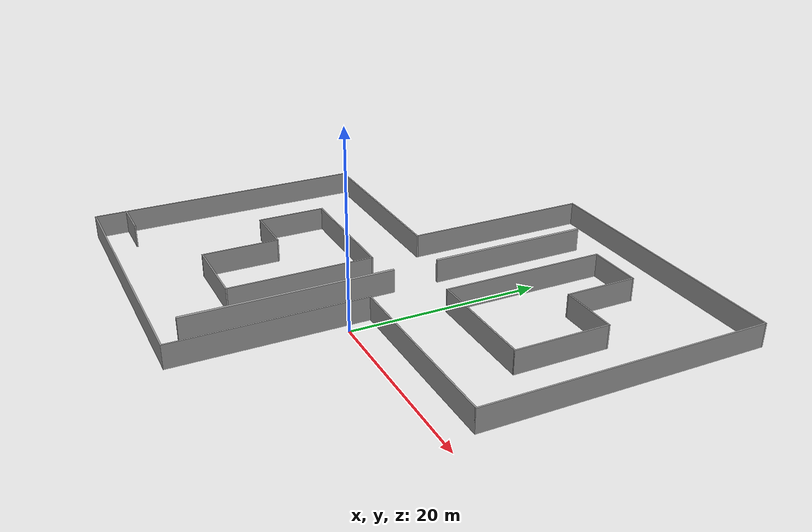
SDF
<?xml version='1.0'?>
<sdf version='1.6'>
  <model name='ext_wall'>
    <pose frame=''>-6.25784 7.76397 0 0 -0 0</pose>
    <link name='Wall_35'>
      <collision name='Wall_35_Collision'>
        <geometry>
          <box>
            <size>30 0.15 2.5</size>
          </box>
        </geometry>
        <pose frame=''>0 0 1.25 0 -0 0</pose>
      </collision>
      <visual name='Wall_35_Visual'>
        <pose frame=''>0 0 1.25 0 -0 0</pose>
        <geometry>
          <box>
            <size>30 0.15 2.5</size>
          </box>
        </geometry>
        <material>
          <script>
            <uri>file://media/materials/scripts/gazebo.material</uri>
            <name>Gazebo/Grey</name>
          </script>
          <ambient>1 1 1 1</ambient>
        </material>
        <meta>
          <layer>0</layer>
        </meta>
      </visual>
      <pose frame=''>-24.8294 -9.925 0 0 -0 -1.5708</pose>
    </link>
    <link name='Wall_37'>
      <collision name='Wall_37_Collision'>
        <geometry>
          <box>
            <size>30 0.15 2.5</size>
          </box>
        </geometry>
        <pose frame=''>0 0 1.25 0 -0 0</pose>
      </collision>
      <visual name='Wall_37_Visual'>
        <pose frame=''>0 0 1.25 0 -0 0</pose>
        <geometry>
          <box>
            <size>30 0.15 2.5</size>
          </box>
        </geometry>
        <material>
          <script>
            <uri>file://media/materials/scripts/gazebo.material</uri>
            <name>Gazebo/Grey</name>
          </script>
          <ambient>1 1 1 1</ambient>
        </material>
        <meta>
          <layer>0</layer>
        </meta>
      </visual>
      <pose frame=''>-9.90441 -24.85 0 0 -0 0</pose>
    </link>
    <link name='Wall_38'>
      <collision name='Wall_38_Collision'>
        <geometry>
          <box>
            <size>20 0.15 2.5</size>
          </box>
        </geometry>
        <pose frame=''>0 0 1.25 0 -0 0</pose>
      </collision>
      <visual name='Wall_38_Visual'>
        <pose frame=''>0 0 1.25 0 -0 0</pose>
        <geometry>
          <box>
            <size>20 0.15 2.5</size>
          </box>
        </geometry>
        <material>
          <script>
            <uri>file://media/materials/scripts/gazebo.material</uri>
            <name>Gazebo/Grey</name>
          </script>
          <ambient>1 1 1 1</ambient>
        </material>
        <meta>
          <layer>0</layer>
        </meta>
      </visual>
      <pose frame=''>5.0206 -14.925 0 0 -0 1.5708</pose>
    </link>
    <link name='Wall_45'>
      <collision name='Wall_45_Collision'>
        <geometry>
          <box>
            <size>20 0.15 2.5</size>
          </box>
        </geometry>
        <pose frame=''>0 0 1.25 0 -0 0</pose>
      </collision>
      <visual name='Wall_45_Visual'>
        <pose frame=''>0 0 1.25 0 -0 0</pose>
        <geometry>
          <box>
            <size>20 0.15 2.5</size>
          </box>
        </geometry>
        <material>
          <script>
            <uri>file://media/materials/scripts/gazebo.material</uri>
            <name>Gazebo/Grey</name>
          </script>
          <ambient>1 1 1 1</ambient>
        </material>
        <meta>
          <layer>0</layer>
        </meta>
      </visual>
      <pose frame=''>14.9456 -5 0 0 -0 0</pose>
    </link>
    <link name='Wall_46'>
      <collision name='Wall_46_Collision'>
        <geometry>
          <box>
            <size>30 0.15 2.5</size>
          </box>
        </geometry>
        <pose frame=''>0 0 1.25 0 -0 0</pose>
      </collision>
      <visual name='Wall_46_Visual'>
        <pose frame=''>0 0 1.25 0 -0 0</pose>
        <geometry>
          <box>
            <size>30 0.15 2.5</size>
          </box>
        </geometry>
        <material>
          <script>
            <uri>file://media/materials/scripts/gazebo.material</uri>
            <name>Gazebo/Grey</name>
          </script>
          <ambient>1 1 1 1</ambient>
        </material>
        <meta>
          <layer>0</layer>
        </meta>
      </visual>
      <pose frame=''>24.8706 9.925 0 0 -0 1.5708</pose>
    </link>
    <link name='Wall_47'>
      <collision name='Wall_47_Collision'>
        <geometry>
          <box>
            <size>30 0.15 2.5</size>
          </box>
        </geometry>
        <pose frame=''>0 0 1.25 0 -0 0</pose>
      </collision>
      <visual name='Wall_47_Visual'>
        <pose frame=''>0 0 1.25 0 -0 0</pose>
        <geometry>
          <box>
            <size>30 0.15 2.5</size>
          </box>
        </geometry>
        <material>
          <script>
            <uri>file://media/materials/scripts/gazebo.material</uri>
            <name>Gazebo/Grey</name>
          </script>
          <ambient>1 1 1 1</ambient>
        </material>
        <meta>
          <layer>0</layer>
        </meta>
      </visual>
      <pose frame=''>9.9456 24.85 0 0 -0 3.14159</pose>
    </link>
    <link name='Wall_50'>
      <collision name='Wall_50_Collision'>
        <geometry>
          <box>
            <size>20 0.15 2.5</size>
          </box>
        </geometry>
        <pose frame=''>0 0 1.25 0 -0 0</pose>
      </collision>
      <visual name='Wall_50_Visual'>
        <pose frame=''>0 0 1.25 0 -0 0</pose>
        <geometry>
          <box>
            <size>20 0.15 2.5</size>
          </box>
        </geometry>
        <material>
          <script>
            <uri>file://media/materials/scripts/gazebo.material</uri>
            <name>Gazebo/Grey</name>
          </script>
          <ambient>1 1 1 1</ambient>
        </material>
        <meta>
          <layer>0</layer>
        </meta>
      </visual>
      <pose frame=''>-4.9794 14.925 0 0 -0 -1.5708</pose>
    </link>
    <link name='Wall_51'>
      <collision name='Wall_51_Collision'>
        <geometry>
          <box>
            <size>20 0.15 2.5</size>
          </box>
        </geometry>
        <pose frame=''>0 0 1.25 0 -0 0</pose>
      </collision>
      <visual name='Wall_51_Visual'>
        <pose frame=''>0 0 1.25 0 -0 0</pose>
        <geometry>
          <box>
            <size>20 0.15 2.5</size>
          </box>
        </geometry>
        <material>
          <script>
            <uri>file://media/materials/scripts/gazebo.material</uri>
            <name>Gazebo/Grey</name>
          </script>
          <ambient>1 1 1 1</ambient>
        </material>
        <meta>
          <layer>0</layer>
        </meta>
      </visual>
      <pose frame=''>-14.9044 5 0 0 -0 3.14159</pose>
    </link>
    <link name='Wall_53'>
      <collision name='Wall_53_Collision'>
        <geometry>
          <box>
            <size>13.8508 0.15 2.5</size>
          </box>
        </geometry>
        <pose frame=''>0 0 1.25 0 -0 0</pose>
      </collision>
      <visual name='Wall_53_Visual'>
        <pose frame=''>0 0 1.25 0 -0 0</pose>
        <geometry>
          <box>
            <size>13.8508 0.15 2.5</size>
          </box>
        </geometry>
        <material>
          <script>
            <uri>file://media/materials/scripts/gazebo.material</uri>
            <name>Gazebo/Grey</name>
          </script>
          <ambient>1 1 1 1</ambient>
        </material>
        <meta>
          <layer>0</layer>
        </meta>
      </visual>
      <pose frame=''>-9.24926 -1.45281 0 0 -0 0</pose>
    </link>
    <link name='Wall_54'>
      <collision name='Wall_54_Collision'>
        <geometry>
          <box>
            <size>15.5 0.15 2.5</size>
          </box>
        </geometry>
        <pose frame=''>0 0 1.25 0 -0 0</pose>
      </collision>
      <visual name='Wall_54_Visual'>
        <pose frame=''>0 0 1.25 0 -0 0</pose>
        <geometry>
          <box>
            <size>15.5 0.15 2.5</size>
          </box>
        </geometry>
        <material>
          <script>
            <uri>file://media/materials/scripts/gazebo.material</uri>
            <name>Gazebo/Grey</name>
          </script>
          <ambient>1 1 1 1</ambient>
        </material>
        <meta>
          <layer>0</layer>
        </meta>
      </visual>
      <pose frame=''>-2.39926 -9.12781 0 0 -0 -1.5708</pose>
    </link>
    <link name='Wall_55'>
      <collision name='Wall_55_Collision'>
        <geometry>
          <box>
            <size>8.25 0.15 2.5</size>
          </box>
        </geometry>
        <pose frame=''>0 0 1.25 0 -0 0</pose>
      </collision>
      <visual name='Wall_55_Visual'>
        <pose frame=''>0 0 1.25 0 -0 0</pose>
        <geometry>
          <box>
            <size>8.25 0.15 2.5</size>
          </box>
        </geometry>
        <material>
          <script>
            <uri>file://media/materials/scripts/gazebo.material</uri>
            <name>Gazebo/Grey</name>
          </script>
          <ambient>1 1 1 1</ambient>
        </material>
        <meta>
          <layer>0</layer>
        </meta>
      </visual>
      <pose frame=''>-6.44926 -16.8028 0 0 -0 3.14159</pose>
    </link>
    <link name='Wall_56'>
      <collision name='Wall_56_Collision'>
        <geometry>
          <box>
            <size>8.25 0.15 2.5</size>
          </box>
        </geometry>
        <pose frame=''>0 0 1.25 0 -0 0</pose>
      </collision>
      <visual name='Wall_56_Visual'>
        <pose frame=''>0 0 1.25 0 -0 0</pose>
        <geometry>
          <box>
            <size>8.25 0.15 2.5</size>
          </box>
        </geometry>
        <material>
          <script>
            <uri>file://media/materials/scripts/gazebo.material</uri>
            <name>Gazebo/Grey</name>
          </script>
          <ambient>1 1 1 1</ambient>
        </material>
        <meta>
          <layer>0</layer>
        </meta>
      </visual>
      <pose frame=''>-10.4993 -12.7528 0 0 -0 1.5708</pose>
    </link>
    <link name='Wall_57'>
      <collision name='Wall_57_Collision'>
        <geometry>
          <box>
            <size>5.75 0.15 2.5</size>
          </box>
        </geometry>
        <pose frame=''>0 0 1.25 0 -0 0</pose>
      </collision>
      <visual name='Wall_57_Visual'>
        <pose frame=''>0 0 1.25 0 -0 0</pose>
        <geometry>
          <box>
            <size>5.75 0.15 2.5</size>
          </box>
        </geometry>
        <material>
          <script>
            <uri>file://media/materials/scripts/gazebo.material</uri>
            <name>Gazebo/Grey</name>
          </script>
          <ambient>1 1 1 1</ambient>
        </material>
        <meta>
          <layer>0</layer>
        </meta>
      </visual>
      <pose frame=''>-13.2993 -8.70281 0 0 -0 3.14159</pose>
    </link>
    <link name='Wall_61'>
      <collision name='Wall_61_Collision'>
        <geometry>
          <box>
            <size>7.4 0.15 2.5</size>
          </box>
        </geometry>
        <pose frame=''>0 0 1.25 0 -0 0</pose>
      </collision>
      <visual name='Wall_61_Visual'>
        <pose frame=''>0 0 1.25 0 -0 0</pose>
        <geometry>
          <box>
            <size>7.4 0.15 2.5</size>
          </box>
        </geometry>
        <material>
          <script>
            <uri>file://media/materials/scripts/gazebo.material</uri>
            <name>Gazebo/Grey</name>
          </script>
          <ambient>1 1 1 1</ambient>
        </material>
        <meta>
          <layer>0</layer>
        </meta>
      </visual>
      <pose frame=''>-16.0993 -5.07781 0 0 -0 1.5708</pose>
    </link>
    <link name='Wall_81'>
      <collision name='Wall_81_Collision'>
        <geometry>
          <box>
            <size>21.8997 0.3 2.5</size>
          </box>
        </geometry>
        <pose frame=''>0 0 1.25 0 -0 0</pose>
      </collision>
      <visual name='Wall_81_Visual'>
        <pose frame=''>0 0 1.25 0 -0 0</pose>
        <geometry>
          <box>
            <size>21.8997 0.3 2.5</size>
          </box>
        </geometry>
        <material>
          <script>
            <uri>file://media/materials/scripts/gazebo.material</uri>
            <name>Gazebo/Grey</name>
          </script>
          <ambient>1 1 1 1</ambient>
        </material>
        <meta>
          <layer>0</layer>
        </meta>
      </visual>
      <pose frame=''>0.968843 -11.554 0 0 -0 1.5708</pose>
    </link>
    <link name='Wall_83'>
      <collision name='Wall_83_Collision'>
        <geometry>
          <box>
            <size>17.1497 0.3 2.5</size>
          </box>
        </geometry>
        <pose frame=''>0 0 1.25 0 -0 0</pose>
      </collision>
      <visual name='Wall_83_Visual'>
        <pose frame=''>0 0 1.25 0 -0 0</pose>
        <geometry>
          <box>
            <size>17.1497 0.3 2.5</size>
          </box>
        </geometry>
        <material>
          <script>
            <uri>file://media/materials/scripts/gazebo.material</uri>
            <name>Gazebo/Grey</name>
          </script>
          <ambient>1 1 1 1</ambient>
        </material>
        <meta>
          <layer>0</layer>
        </meta>
      </visual>
      <pose frame=''>0.968843 12.771 0 0 -0 1.5708</pose>
    </link>
    <link name='Wall_85'>
      <collision name='Wall_85_Collision'>
        <geometry>
          <box>
            <size>17.5 0.15 2.5</size>
          </box>
        </geometry>
        <pose frame=''>0 0 1.25 0 -0 0</pose>
      </collision>
      <visual name='Wall_85_Visual'>
        <pose frame=''>0 0 1.25 0 -0 0</pose>
        <geometry>
          <box>
            <size>17.5 0.15 2.5</size>
          </box>
        </geometry>
        <material>
          <script>
            <uri>file://media/materials/scripts/gazebo.material</uri>
            <name>Gazebo/Grey</name>
          </script>
          <ambient>1 1 1 1</ambient>
        </material>
        <meta>
          <layer>0</layer>
        </meta>
      </visual>
      <pose frame=''>6.90221 10.8782 0 0 -0 -1.5708</pose>
    </link>
    <link name='Wall_86'>
      <collision name='Wall_86_Collision'>
        <geometry>
          <box>
            <size>12.25 0.15 2.5</size>
          </box>
        </geometry>
        <pose frame=''>0 0 1.25 0 -0 0</pose>
      </collision>
      <visual name='Wall_86_Visual'>
        <pose frame=''>0 0 1.25 0 -0 0</pose>
        <geometry>
          <box>
            <size>12.25 0.15 2.5</size>
          </box>
        </geometry>
        <material>
          <script>
            <uri>file://media/materials/scripts/gazebo.material</uri>
            <name>Gazebo/Grey</name>
          </script>
          <ambient>1 1 1 1</ambient>
        </material>
        <meta>
          <layer>0</layer>
        </meta>
      </visual>
      <pose frame=''>12.9522 2.20321 0 0 -0 0</pose>
    </link>
    <link name='Wall_87'>
      <collision name='Wall_87_Collision'>
        <geometry>
          <box>
            <size>10 0.15 2.5</size>
          </box>
        </geometry>
        <pose frame=''>0 0 1.25 0 -0 0</pose>
      </collision>
      <visual name='Wall_87_Visual'>
        <pose frame=''>0 0 1.25 0 -0 0</pose>
        <geometry>
          <box>
            <size>10 0.15 2.5</size>
          </box>
        </geometry>
        <material>
          <script>
            <uri>file://media/materials/scripts/gazebo.material</uri>
            <name>Gazebo/Grey</name>
          </script>
          <ambient>1 1 1 1</ambient>
        </material>
        <meta>
          <layer>0</layer>
        </meta>
      </visual>
      <pose frame=''>19.0022 7.12821 0 0 -0 1.5708</pose>
    </link>
    <link name='Wall_88'>
      <collision name='Wall_88_Collision'>
        <geometry>
          <box>
            <size>6.4 0.15 2.5</size>
          </box>
        </geometry>
        <pose frame=''>0 0 1.25 0 -0 0</pose>
      </collision>
      <visual name='Wall_88_Visual'>
        <pose frame=''>0 0 1.25 0 -0 0</pose>
        <geometry>
          <box>
            <size>6.4 0.15 2.5</size>
          </box>
        </geometry>
        <material>
          <script>
            <uri>file://media/materials/scripts/gazebo.material</uri>
            <name>Gazebo/Grey</name>
          </script>
          <ambient>1 1 1 1</ambient>
        </material>
        <meta>
          <layer>0</layer>
        </meta>
      </visual>
      <pose frame=''>15.8772 12.0532 0 0 -0 3.14159</pose>
    </link>
    <link name='Wall_89'>
      <collision name='Wall_89_Collision'>
        <geometry>
          <box>
            <size>7.65 0.15 2.5</size>
          </box>
        </geometry>
        <pose frame=''>0 0 1.25 0 -0 0</pose>
      </collision>
      <visual name='Wall_89_Visual'>
        <pose frame=''>0 0 1.25 0 -0 0</pose>
        <geometry>
          <box>
            <size>7.65 0.15 2.5</size>
          </box>
        </geometry>
        <material>
          <script>
            <uri>file://media/materials/scripts/gazebo.material</uri>
            <name>Gazebo/Grey</name>
          </script>
          <ambient>1 1 1 1</ambient>
        </material>
        <meta>
          <layer>0</layer>
        </meta>
      </visual>
      <pose frame=''>12.7522 15.8032 0 0 -0 1.5708</pose>
    </link>
    <link name='Wall_90'>
      <collision name='Wall_90_Collision'>
        <geometry>
          <box>
            <size>6 0.15 2.5</size>
          </box>
        </geometry>
        <pose frame=''>0 0 1.25 0 -0 0</pose>
      </collision>
      <visual name='Wall_90_Visual'>
        <pose frame=''>0 0 1.25 0 -0 0</pose>
        <geometry>
          <box>
            <size>6 0.15 2.5</size>
          </box>
        </geometry>
        <material>
          <script>
            <uri>file://media/materials/scripts/gazebo.material</uri>
            <name>Gazebo/Grey</name>
          </script>
          <ambient>1 1 1 1</ambient>
        </material>
        <meta>
          <layer>0</layer>
        </meta>
      </visual>
      <pose frame=''>9.82721 19.5532 0 0 -0 3.14159</pose>
    </link>
    <link name='Wall_92'>
      <collision name='Wall_92_Collision'>
        <geometry>
          <box>
            <size>4.5 0.15 2.5</size>
          </box>
        </geometry>
        <pose frame=''>0 0 1.25 0 -0 0</pose>
      </collision>
      <visual name='Wall_92_Visual'>
        <pose frame=''>0 0 1.25 0 -0 0</pose>
        <geometry>
          <box>
            <size>4.5 0.15 2.5</size>
          </box>
        </geometry>
        <material>
          <script>
            <uri>file://media/materials/scripts/gazebo.material</uri>
            <name>Gazebo/Grey</name>
          </script>
          <ambient>1 1 1 1</ambient>
        </material>
        <meta>
          <layer>0</layer>
        </meta>
      </visual>
      <pose frame=''>-22.6956 -21.4771 0 0 -0 0</pose>
    </link>
    <static>1</static>
  </model>
</sdf>
